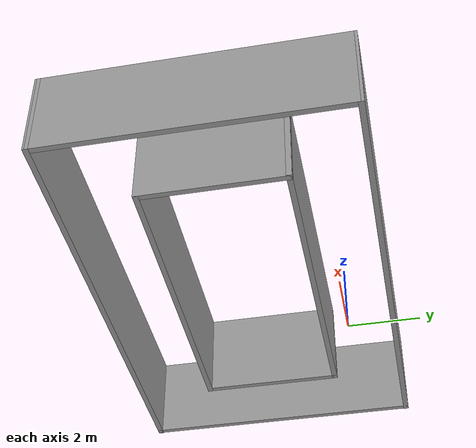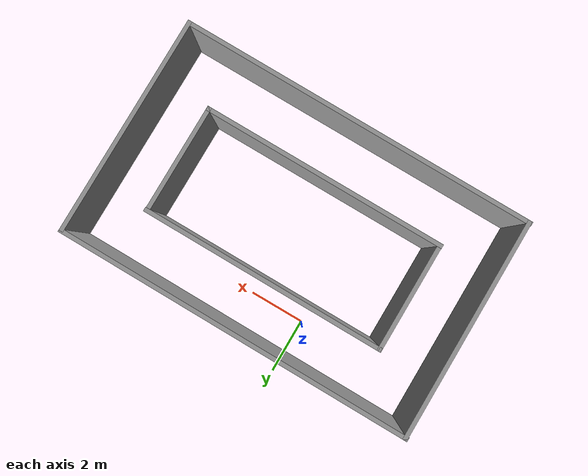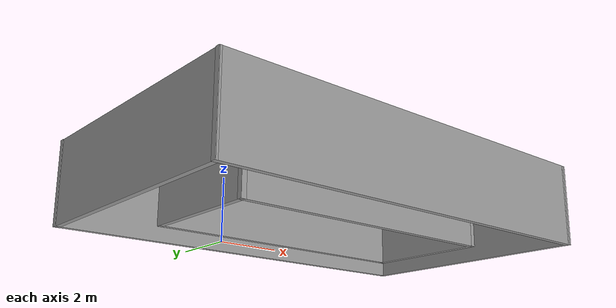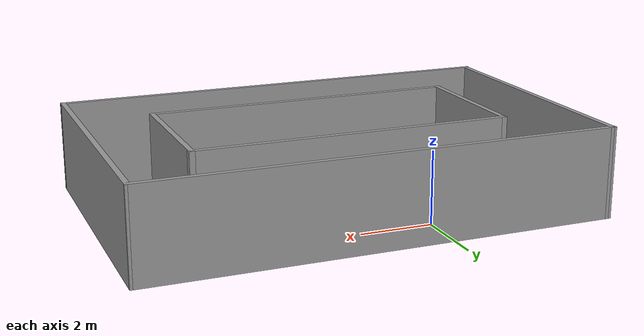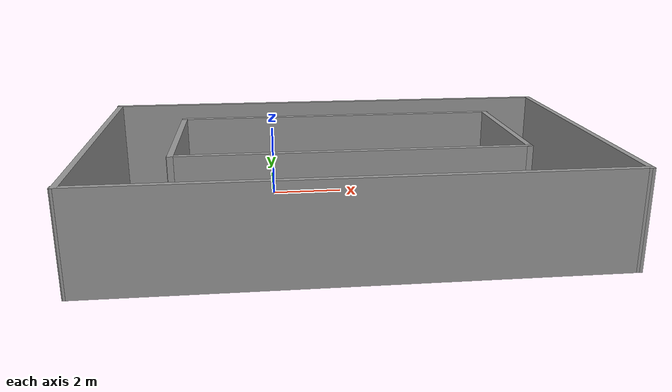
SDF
<?xml version='1.0'?>
<sdf version='1.6'>
  <model name='simpletrack'>
    <pose frame=''>1.81669 -2.67148 0 0 -0 0</pose>
    <link name='Wall_0'>
      <collision name='Wall_0_Collision'>
        <geometry>
          <box>
            <size>8.75 0.15 2.5</size>
          </box>
        </geometry>
        <pose frame=''>0 0 1.25 0 -0 0</pose>
      </collision>
      <visual name='Wall_0_Visual'>
        <pose frame=''>0 0 1.25 0 -0 0</pose>
        <geometry>
          <box>
            <size>8.75 0.15 2.5</size>
          </box>
        </geometry>
        <material>
          <script>
            <uri>file://media/materials/scripts/gazebo.material</uri>
            <name>Gazebo/Grey</name>
          </script>
          <ambient>1 1 1 1</ambient>
        </material>
      </visual>
      <pose frame=''>0.033307 -1.83852 0 0 -0 0</pose>
    </link>
    <link name='Wall_1'>
      <collision name='Wall_1_Collision'>
        <geometry>
          <box>
            <size>3.95835 0.15 2.5</size>
          </box>
        </geometry>
        <pose frame=''>0 0 1.25 0 -0 0</pose>
      </collision>
      <visual name='Wall_1_Visual'>
        <pose frame=''>0 0 1.25 0 -0 0</pose>
        <geometry>
          <box>
            <size>3.95835 0.15 2.5</size>
          </box>
        </geometry>
        <material>
          <script>
            <uri>file://media/materials/scripts/gazebo.material</uri>
            <name>Gazebo/Grey</name>
          </script>
          <ambient>1 1 1 1</ambient>
        </material>
      </visual>
      <pose frame=''>4.34331 0.065627 0 0 -0 1.5708</pose>
    </link>
    <link name='Wall_2'>
      <collision name='Wall_2_Collision'>
        <geometry>
          <box>
            <size>8.75 0.15 2.5</size>
          </box>
        </geometry>
        <pose frame=''>0 0 1.25 0 -0 0</pose>
      </collision>
      <visual name='Wall_2_Visual'>
        <pose frame=''>0 0 1.25 0 -0 0</pose>
        <geometry>
          <box>
            <size>8.75 0.15 2.5</size>
          </box>
        </geometry>
        <material>
          <script>
            <uri>file://media/materials/scripts/gazebo.material</uri>
            <name>Gazebo/Grey</name>
          </script>
          <ambient>1 1 1 1</ambient>
        </material>
      </visual>
      <pose frame=''>0.063421 1.96978 0 0 -0 3.14159</pose>
    </link>
    <link name='Wall_3'>
      <collision name='Wall_3_Collision'>
        <geometry>
          <box>
            <size>3.95835 0.15 2.5</size>
          </box>
        </geometry>
        <pose frame=''>0 0 1.25 0 -0 0</pose>
      </collision>
      <visual name='Wall_3_Visual'>
        <pose frame=''>0 0 1.25 0 -0 0</pose>
        <geometry>
          <box>
            <size>3.95835 0.15 2.5</size>
          </box>
        </geometry>
        <material>
          <script>
            <uri>file://media/materials/scripts/gazebo.material</uri>
            <name>Gazebo/Grey</name>
          </script>
          <ambient>1 1 1 1</ambient>
        </material>
      </visual>
      <pose frame=''>-4.25669 0.065627 0 0 0 -1.5708</pose>
    </link>
    <link name='Wall_5'>
      <collision name='Wall_5_Collision'>
        <geometry>
          <box>
            <size>12.8621 0.15 2.5</size>
          </box>
        </geometry>
        <pose frame=''>0 0 1.25 0 -0 0</pose>
      </collision>
      <visual name='Wall_5_Visual'>
        <pose frame=''>0 0 1.25 0 -0 0</pose>
        <geometry>
          <box>
            <size>12.8621 0.15 2.5</size>
          </box>
        </geometry>
        <material>
          <script>
            <uri>file://media/materials/scripts/gazebo.material</uri>
            <name>Gazebo/Grey</name>
          </script>
          <ambient>1 1 1 1</ambient>
        </material>
      </visual>
      <pose frame=''>0 3.925 0 0 0 -0.001582</pose>
    </link>
    <link name='Wall_6'>
      <collision name='Wall_6_Collision'>
        <geometry>
          <box>
            <size>8 0.15 2.5</size>
          </box>
        </geometry>
        <pose frame=''>0 0 1.25 0 -0 0</pose>
      </collision>
      <visual name='Wall_6_Visual'>
        <pose frame=''>0 0 1.25 0 -0 0</pose>
        <geometry>
          <box>
            <size>8 0.15 2.5</size>
          </box>
        </geometry>
        <material>
          <script>
            <uri>file://media/materials/scripts/gazebo.material</uri>
            <name>Gazebo/Grey</name>
          </script>
          <ambient>1 1 1 1</ambient>
        </material>
      </visual>
      <pose frame=''>6.35602 -0.010057 0 0 0 -1.5708</pose>
    </link>
    <link name='Wall_7'>
      <collision name='Wall_7_Collision'>
        <geometry>
          <box>
            <size>12.8621 0.15 2.5</size>
          </box>
        </geometry>
        <pose frame=''>0 0 1.25 0 -0 0</pose>
      </collision>
      <visual name='Wall_7_Visual'>
        <pose frame=''>0 0 1.25 0 -0 0</pose>
        <geometry>
          <box>
            <size>12.8621 0.15 2.5</size>
          </box>
        </geometry>
        <material>
          <script>
            <uri>file://media/materials/scripts/gazebo.material</uri>
            <name>Gazebo/Grey</name>
          </script>
          <ambient>1 1 1 1</ambient>
        </material>
      </visual>
      <pose frame=''>0 -3.925 0 0 -0 3.14001</pose>
    </link>
    <link name='Wall_8'>
      <collision name='Wall_8_Collision'>
        <geometry>
          <box>
            <size>8 0.15 2.5</size>
          </box>
        </geometry>
        <pose frame=''>0 0 1.25 0 -0 0</pose>
      </collision>
      <visual name='Wall_8_Visual'>
        <pose frame=''>0 0 1.25 0 -0 0</pose>
        <geometry>
          <box>
            <size>8 0.15 2.5</size>
          </box>
        </geometry>
        <material>
          <script>
            <uri>file://media/materials/scripts/gazebo.material</uri>
            <name>Gazebo/Grey</name>
          </script>
          <ambient>1 1 1 1</ambient>
        </material>
      </visual>
      <pose frame=''>-6.33591 0.010057 0 0 -0 1.5708</pose>
    </link>
    <static>1</static>
  </model>
</sdf>
